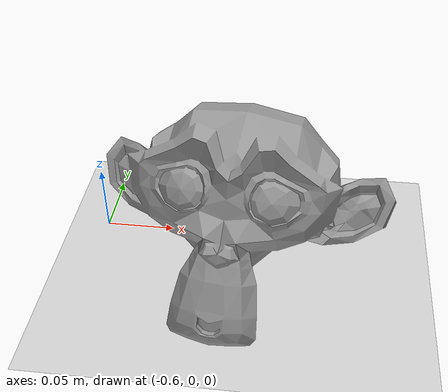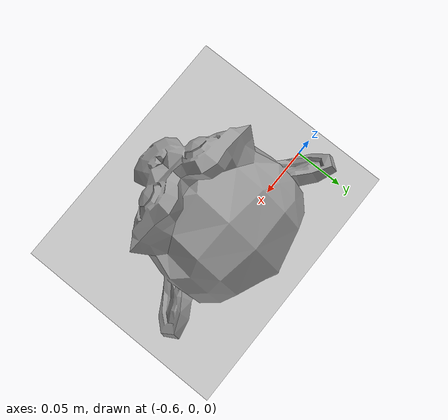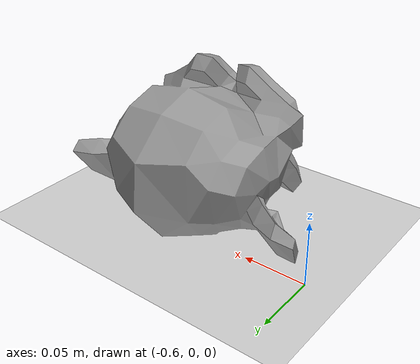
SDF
<sdf version="1.6">
 <world name="default">
  <model name="ground_plane">
   <static>1</static>
   <link name="link">
    <collision name="collision">
     <geometry><plane><normal>0 0 1</normal><size>100 100</size></plane></geometry>
     <surface>
      <contact><collide_bitmask>65535</collide_bitmask></contact>
      <friction><ode><mu>100</mu><mu2>50</mu2></ode></friction>
     </surface>
    </collision>
    <visual name="visual">
     <cast_shadows>0</cast_shadows>
     <geometry><plane><normal>0 0 1</normal><size>100 100</size></plane></geometry>
     <material>
      <script><uri>file://media/materials/scripts/gazebo.material</uri><name>Gazebo/Grey</name></script>
     </material>
    </visual>
   </link>
  </model>
  <model name="monkey_soft">
   <link name="link_0">
    <inertial>
     <mass>0.2</mass>
     <inertia>
      <ixx>0.00166667</ixx>
      <ixy>0</ixy>
      <ixz>0</ixz>
      <iyy>0.00166667</iyy>
      <iyz>0</iyz>
      <izz>0.00166667</izz>
     </inertia>
    </inertial>
    <visual name="visual">
     <geometry>
      <mesh>
       <uri>/home/ben/catkin_ws/src/version1_description/meshes/monkey.dae</uri>
       <scale>0.08 0.08 0.08</scale>
      </mesh>
     </geometry>
     <material>
      <lighting>1</lighting>
      <script><uri>file://media/materials/scripts/gazebo.material</uri><name>Gazebo/Grey</name></script>
      <shader type="vertex"><normal_map>__default__</normal_map></shader>
      <ambient>0.3 0.3 0.3 1</ambient>
      <diffuse>0.7 0.7 0.7 1</diffuse>
      <specular>0.01 0.01 0.01 1</specular>
      <emissive>0 0 0 1</emissive>
     </material>
    </visual>
    <collision name="collision">
     <geometry>
      <mesh>
       <uri>/home/ben/catkin_ws/src/version1_description/meshes/monkey.dae</uri>
       <scale>0.08 0.08 0.08</scale>
      </mesh>
     </geometry>
     <surface>
      <friction>
       <ode><mu>2000</mu><mu2>2000</mu2><fdir1>0 0 0</fdir1><slip1>0</slip1><slip2>0</slip2></ode>
       <torsional>
        <coefficient>1</coefficient>
        <patch_radius>0</patch_radius>
        <surface_radius>0</surface_radius>
        <use_patch_radius>0</use_patch_radius>
        <ode><slip>0</slip></ode>
       </torsional>
      </friction>
      <bounce><restitution_coefficient>0</restitution_coefficient><threshold>1e+06</threshold></bounce>
      <contact>
       <collide_without_contact>0</collide_without_contact>
       <collide_without_contact_bitmask>1</collide_without_contact_bitmask>
       <collide_bitmask>1</collide_bitmask>
       <ode>
        <soft_cfm>2</soft_cfm>
        <soft_erp>2</soft_erp>
        <kp>1e+13</kp>
        <kd>1</kd>
        <max_vel>0.01</max_vel>
        <min_depth>0</min_depth>
       </ode>
       <bullet>
        <split_impulse>1</split_impulse>
        <split_impulse_penetration_threshold>-0.01</split_impulse_penetration_threshold>
        <soft_cfm>2</soft_cfm>
        <soft_erp>2</soft_erp>
        <kp>1e+13</kp>
        <kd>1</kd>
       </bullet>
      </contact>
     </surface>
    </collision>
   </link>
   <static>0</static>
   <pose>-0.497622 -0.029559 0.043322 -0.603732 0.048613 -0.079889</pose>
  </model>
 </world>
</sdf>
